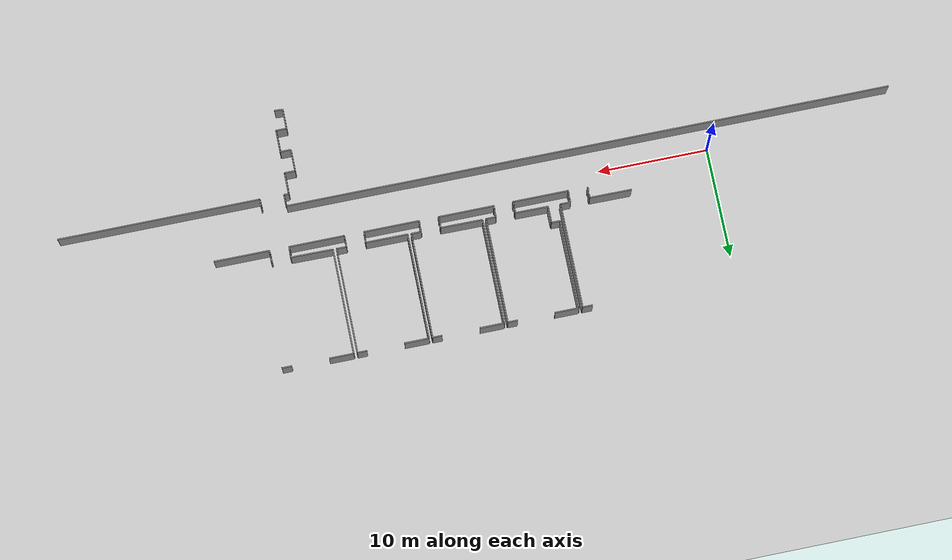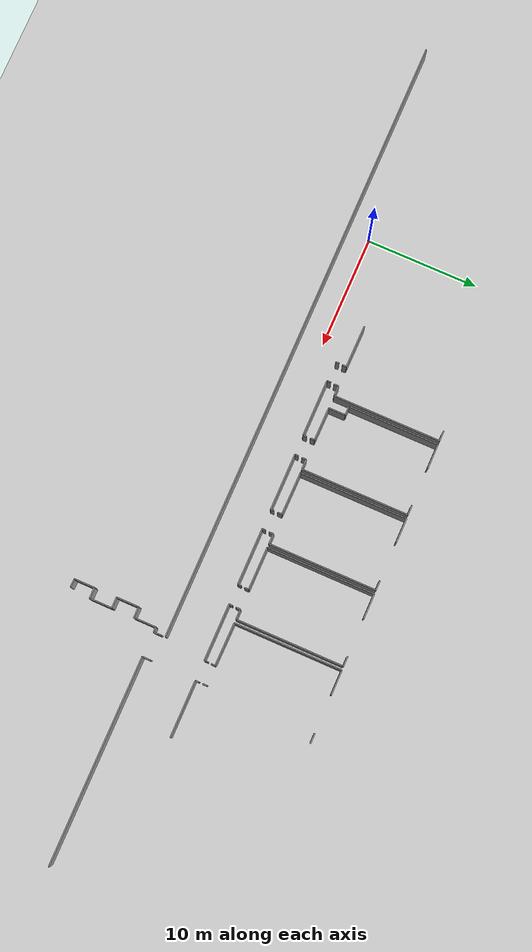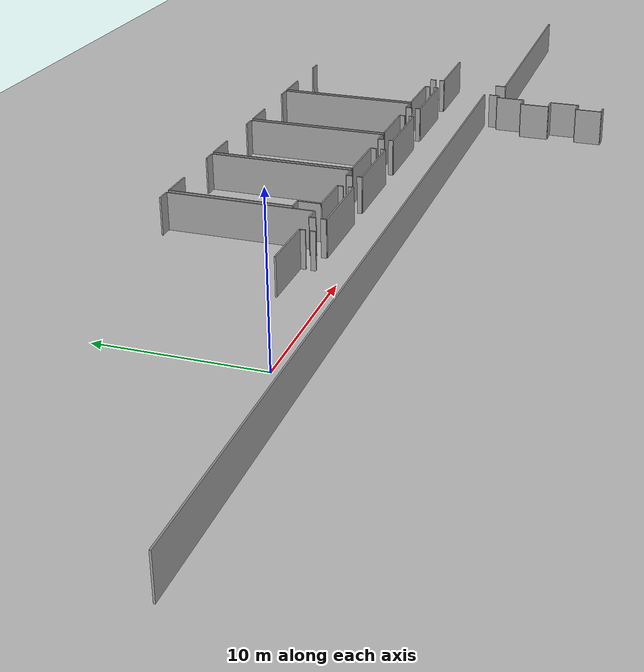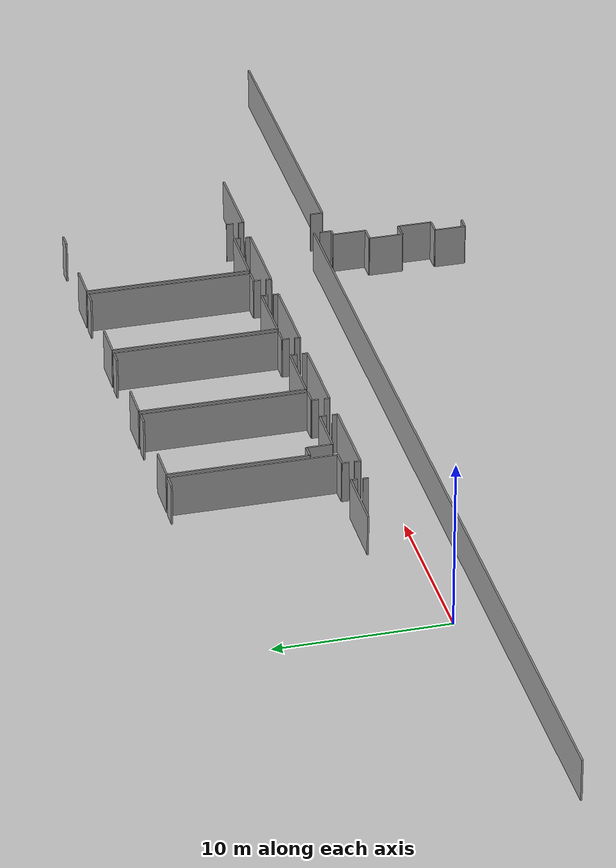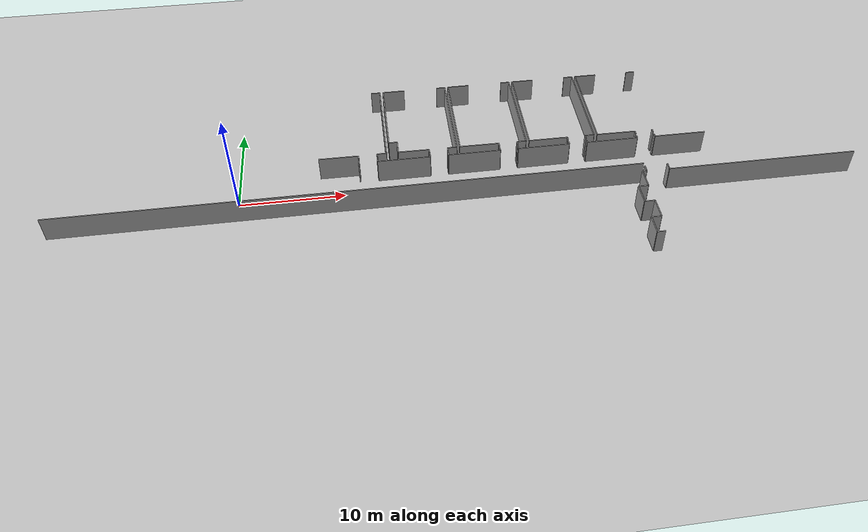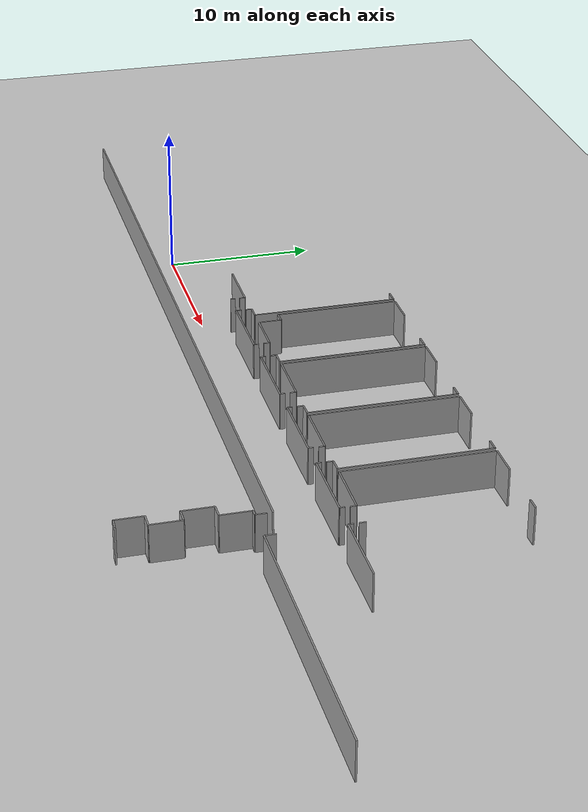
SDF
<sdf version="1.6">
 <world name="default">
  <model name="ground_plane">
   <static>1</static>
   <link name="link">
    <collision name="collision">
     <geometry><plane><normal>0 0 1</normal><size>100 100</size></plane></geometry>
     <surface><friction><ode><mu>100</mu><mu2>50</mu2></ode></friction></surface>
    </collision>
    <visual name="visual">
     <cast_shadows>0</cast_shadows>
     <geometry><plane><normal>0 0 1</normal><size>100 100</size></plane></geometry>
     <material>
      <script><uri>file://media/materials/scripts/gazebo.material</uri><name>Gazebo/Grey</name></script>
     </material>
    </visual>
   </link>
  </model>
  <model name="0510032198_A_40_1_106">
   <static>1</static>
   <link name="Wall_115">
    <collision name="Wall_115_Collision">
     <geometry><box><size>0.90599550242 0.1 2.5</size></box></geometry>
     <pose>0.45299775121 0 1.25 0 0 0</pose>
    </collision>
    <visual name="Wall_115_Visual">
     <pose>0.45299775121 0 1.25 0 0 0</pose>
     <geometry><box><size>0.90599550242 0.1 2.5</size></box></geometry>
     <material>
      <script><uri>file://media/materials/scripts/gazebo.material</uri><name>Gazebo/Grey</name></script>
      <ambient>1 1 1 1</ambient>
     </material>
    </visual>
    <pose>80.8588598508 -0.336810275826 0 0 0 0.0</pose>
   </link>
   <link name="Wall_116">
    <collision name="Wall_116_Collision">
     <geometry><box><size>9.60944745836 0.1 2.5</size></box></geometry>
     <pose>4.80472372918 0 1.25 0 0 0</pose>
    </collision>
    <visual name="Wall_116_Visual">
     <pose>4.80472372918 0 1.25 0 0 0</pose>
     <geometry><box><size>9.60944745836 0.1 2.5</size></box></geometry>
     <material>
      <script><uri>file://media/materials/scripts/gazebo.material</uri><name>Gazebo/Grey</name></script>
      <ambient>1 1 1 1</ambient>
     </material>
    </visual>
    <pose>81.7648553533 -0.336810275826 0 0 0 -1.57079632679</pose>
   </link>
   <link name="Wall_117">
    <collision name="Wall_117_Collision">
     <geometry><box><size>0.909934060908 0.1 2.5</size></box></geometry>
     <pose>0.454967030454 0 1.25 0 0 0</pose>
    </collision>
    <visual name="Wall_117_Visual">
     <pose>0.454967030454 0 1.25 0 0 0</pose>
     <geometry><box><size>0.909934060908 0.1 2.5</size></box></geometry>
     <material>
      <script><uri>file://media/materials/scripts/gazebo.material</uri><name>Gazebo/Grey</name></script>
      <ambient>1 1 1 1</ambient>
     </material>
    </visual>
    <pose>81.7648553533 -9.94625773419 0 0 0 3.14159265359</pose>
   </link>
   <link name="Wall_118">
    <collision name="Wall_118_Collision">
     <geometry><box><size>0.410499434626 0.1 2.5</size></box></geometry>
     <pose>0.205249717313 0 1.25 0 0 0</pose>
    </collision>
    <visual name="Wall_118_Visual">
     <pose>0.205249717313 0 1.25 0 0 0</pose>
     <geometry><box><size>0.410499434626 0.1 2.5</size></box></geometry>
     <material>
      <script><uri>file://media/materials/scripts/gazebo.material</uri><name>Gazebo/Grey</name></script>
      <ambient>1 1 1 1</ambient>
     </material>
    </visual>
    <pose>80.8549212924 -9.94625773419 0 0 0 -1.57079632679</pose>
   </link>
   <link name="Wall_119">
    <collision name="Wall_119_Collision">
     <geometry><box><size>0.36374493387 0.1 2.5</size></box></geometry>
     <pose>0.181872466935 0 1.25 0 0 0</pose>
    </collision>
    <visual name="Wall_119_Visual">
     <pose>0.181872466935 0 1.25 0 0 0</pose>
     <geometry><box><size>0.36374493387 0.1 2.5</size></box></geometry>
     <material>
      <script><uri>file://media/materials/scripts/gazebo.material</uri><name>Gazebo/Grey</name></script>
      <ambient>1 1 1 1</ambient>
     </material>
    </visual>
    <pose>79.0623689794 -10.3567571688 0 0 0 1.57079632679</pose>
   </link>
   <link name="Wall_120">
    <collision name="Wall_120_Collision">
     <geometry><box><size>3.80484100542 0.1 2.5</size></box></geometry>
     <pose>1.90242050271 0 1.25 0 0 0</pose>
    </collision>
    <visual name="Wall_120_Visual">
     <pose>1.90242050271 0 1.25 0 0 0</pose>
     <geometry><box><size>3.80484100542 0.1 2.5</size></box></geometry>
     <material>
      <script><uri>file://media/materials/scripts/gazebo.material</uri><name>Gazebo/Grey</name></script>
      <ambient>1 1 1 1</ambient>
     </material>
    </visual>
    <pose>79.0623689794 -9.99301223494 0 0 0 3.13568228063</pose>
   </link>
   <link name="Wall_121">
    <collision name="Wall_121_Collision">
     <geometry><box><size>1.4999555324 0.1 2.5</size></box></geometry>
     <pose>0.749977766202 0 1.25 0 0 0</pose>
    </collision>
    <visual name="Wall_121_Visual">
     <pose>0.749977766202 0 1.25 0 0 0</pose>
     <geometry><box><size>1.4999555324 0.1 2.5</size></box></geometry>
     <material>
      <script><uri>file://media/materials/scripts/gazebo.material</uri><name>Gazebo/Grey</name></script>
      <ambient>1 1 1 1</ambient>
     </material>
    </visual>
    <pose>82.9001765999 -9.94536838227 0 0 0 1.57079632679</pose>
   </link>
   <link name="Wall_122">
    <collision name="Wall_122_Collision">
     <geometry><box><size>0.808674992695 0.1 2.5</size></box></geometry>
     <pose>0.404337496347 0 1.25 0 0 0</pose>
    </collision>
    <visual name="Wall_122_Visual">
     <pose>0.404337496347 0 1.25 0 0 0</pose>
     <geometry><box><size>0.808674992695 0.1 2.5</size></box></geometry>
     <material>
      <script><uri>file://media/materials/scripts/gazebo.material</uri><name>Gazebo/Grey</name></script>
      <ambient>1 1 1 1</ambient>
     </material>
    </visual>
    <pose>82.9001765999 -8.44541284986 0 0 0 3.14159265359</pose>
   </link>
   <link name="Wall_123">
    <collision name="Wall_123_Collision">
     <geometry><box><size>8.10860257404 0.1 2.5</size></box></geometry>
     <pose>4.05430128702 0 1.25 0 0 0</pose>
    </collision>
    <visual name="Wall_123_Visual">
     <pose>4.05430128702 0 1.25 0 0 0</pose>
     <geometry><box><size>8.10860257404 0.1 2.5</size></box></geometry>
     <material>
      <script><uri>file://media/materials/scripts/gazebo.material</uri><name>Gazebo/Grey</name></script>
      <ambient>1 1 1 1</ambient>
     </material>
    </visual>
    <pose>82.0915016072 -8.44541284986 0 0 0 1.57079632679</pose>
   </link>
   <link name="Wall_124">
    <collision name="Wall_124_Collision">
     <geometry><box><size>2.1922524743 0.1 2.5</size></box></geometry>
     <pose>1.09612623715 0 1.25 0 0 0</pose>
    </collision>
    <visual name="Wall_124_Visual">
     <pose>1.09612623715 0 1.25 0 0 0</pose>
     <geometry><box><size>2.1922524743 0.1 2.5</size></box></geometry>
     <material>
      <script><uri>file://media/materials/scripts/gazebo.material</uri><name>Gazebo/Grey</name></script>
      <ambient>1 1 1 1</ambient>
     </material>
    </visual>
    <pose>82.0915016072 -0.336810275826 0 0 0 0.0</pose>
   </link>
   <link name="Wall_125">
    <collision name="Wall_125_Collision">
     <geometry><box><size>0.88388875478 0.1 2.5</size></box></geometry>
     <pose>0.44194437739 0 1.25 0 0 0</pose>
    </collision>
    <visual name="Wall_125_Visual">
     <pose>0.44194437739 0 1.25 0 0 0</pose>
     <geometry><box><size>0.88388875478 0.1 2.5</size></box></geometry>
     <material>
      <script><uri>file://media/materials/scripts/gazebo.material</uri><name>Gazebo/Grey</name></script>
      <ambient>1 1 1 1</ambient>
     </material>
    </visual>
    <pose>87.6864145142 -0.336810275826 0 0 0 0.0</pose>
   </link>
   <link name="Wall_126">
    <collision name="Wall_126_Collision">
     <geometry><box><size>9.61567292178 0.1 2.5</size></box></geometry>
     <pose>4.80783646089 0 1.25 0 0 0</pose>
    </collision>
    <visual name="Wall_126_Visual">
     <pose>4.80783646089 0 1.25 0 0 0</pose>
     <geometry><box><size>9.61567292178 0.1 2.5</size></box></geometry>
     <material>
      <script><uri>file://media/materials/scripts/gazebo.material</uri><name>Gazebo/Grey</name></script>
      <ambient>1 1 1 1</ambient>
     </material>
    </visual>
    <pose>88.570303269 -0.336810275826 0 0 0 -1.57079632679</pose>
   </link>
   <link name="Wall_127">
    <collision name="Wall_127_Collision">
     <geometry><box><size>0.893417525315 0.1 2.5</size></box></geometry>
     <pose>0.446708762657 0 1.25 0 0 0</pose>
    </collision>
    <visual name="Wall_127_Visual">
     <pose>0.446708762657 0 1.25 0 0 0</pose>
     <geometry><box><size>0.893417525315 0.1 2.5</size></box></geometry>
     <material>
      <script><uri>file://media/materials/scripts/gazebo.material</uri><name>Gazebo/Grey</name></script>
      <ambient>1 1 1 1</ambient>
     </material>
    </visual>
    <pose>88.570303269 -9.9524831976 0 0 0 3.14159265359</pose>
   </link>
   <link name="Wall_128">
    <collision name="Wall_128_Collision">
     <geometry><box><size>0.40427397121 0.1 2.5</size></box></geometry>
     <pose>0.202136985605 0 1.25 0 0 0</pose>
    </collision>
    <visual name="Wall_128_Visual">
     <pose>0.202136985605 0 1.25 0 0 0</pose>
     <geometry><box><size>0.40427397121 0.1 2.5</size></box></geometry>
     <material>
      <script><uri>file://media/materials/scripts/gazebo.material</uri><name>Gazebo/Grey</name></script>
      <ambient>1 1 1 1</ambient>
     </material>
    </visual>
    <pose>87.6768857437 -9.9524831976 0 0 0 -1.57079632679</pose>
   </link>
   <link name="Wall_129">
    <collision name="Wall_129_Collision">
     <geometry><box><size>0.388900888081 0.1 2.5</size></box></geometry>
     <pose>0.194450444041 0 1.25 0 0 0</pose>
    </collision>
    <visual name="Wall_129_Visual">
     <pose>0.194450444041 0 1.25 0 0 0</pose>
     <geometry><box><size>0.388900888081 0.1 2.5</size></box></geometry>
     <material>
      <script><uri>file://media/materials/scripts/gazebo.material</uri><name>Gazebo/Grey</name></script>
      <ambient>1 1 1 1</ambient>
     </material>
    </visual>
    <pose>85.8789973192 -10.3567571688 0 0 0 1.57079632679</pose>
   </link>
   <link name="Wall_130">
    <collision name="Wall_130_Collision">
     <geometry><box><size>2.97890560167 0.1 2.5</size></box></geometry>
     <pose>1.48945280083 0 1.25 0 0 0</pose>
    </collision>
    <visual name="Wall_130_Visual">
     <pose>1.48945280083 0 1.25 0 0 0</pose>
     <geometry><box><size>2.97890560167 0.1 2.5</size></box></geometry>
     <material>
      <script><uri>file://media/materials/scripts/gazebo.material</uri><name>Gazebo/Grey</name></script>
      <ambient>1 1 1 1</ambient>
     </material>
    </visual>
    <pose>85.8789973192 -9.96785628073 0 0 0 3.13404353486</pose>
   </link>
   <link name="Wall_131">
    <collision name="Wall_131_Collision">
     <geometry><box><size>9.61770572616 0.1 2.5</size></box></geometry>
     <pose>4.80885286308 0 1.25 0 0 0</pose>
    </collision>
    <visual name="Wall_131_Visual">
     <pose>4.80885286308 0 1.25 0 0 0</pose>
     <geometry><box><size>9.61770572616 0.1 2.5</size></box></geometry>
     <material>
      <script><uri>file://media/materials/scripts/gazebo.material</uri><name>Gazebo/Grey</name></script>
      <ambient>1 1 1 1</ambient>
     </material>
    </visual>
    <pose>88.8912322606 -9.93901586858 0 0 0 1.57079632679</pose>
   </link>
   <link name="Wall_132">
    <collision name="Wall_132_Collision">
     <geometry><box><size>2.2005107421 0.1 2.5</size></box></geometry>
     <pose>1.10025537105 0 1.25 0 0 0</pose>
    </collision>
    <visual name="Wall_132_Visual">
     <pose>1.10025537105 0 1.25 0 0 0</pose>
     <geometry><box><size>2.2005107421 0.1 2.5</size></box></geometry>
     <material>
      <script><uri>file://media/materials/scripts/gazebo.material</uri><name>Gazebo/Grey</name></script>
      <ambient>1 1 1 1</ambient>
     </material>
    </visual>
    <pose>88.8912322606 -0.321310142423 0 0 0 0.0</pose>
   </link>
   <link name="Wall_133">
    <collision name="Wall_133_Collision">
     <geometry><box><size>0.868769772199 0.1 2.5</size></box></geometry>
     <pose>0.434384886099 0 1.25 0 0 0</pose>
    </collision>
    <visual name="Wall_133_Visual">
     <pose>0.434384886099 0 1.25 0 0 0</pose>
     <geometry><box><size>0.868769772199 0.1 2.5</size></box></geometry>
     <material>
      <script><uri>file://media/materials/scripts/gazebo.material</uri><name>Gazebo/Grey</name></script>
      <ambient>1 1 1 1</ambient>
     </material>
    </visual>
    <pose>94.5251496017 -0.321310142423 0 0 0 0.0</pose>
   </link>
   <link name="Wall_134">
    <collision name="Wall_134_Collision">
     <geometry><box><size>9.63790671969 0.1 2.5</size></box></geometry>
     <pose>4.81895335984 0 1.25 0 0 0</pose>
    </collision>
    <visual name="Wall_134_Visual">
     <pose>4.81895335984 0 1.25 0 0 0</pose>
     <geometry><box><size>9.63790671969 0.1 2.5</size></box></geometry>
     <material>
      <script><uri>file://media/materials/scripts/gazebo.material</uri><name>Gazebo/Grey</name></script>
      <ambient>1 1 1 1</ambient>
     </material>
    </visual>
    <pose>95.3939193739 -0.321310142423 0 0 0 -1.57079632679</pose>
   </link>
   <link name="Wall_135">
    <collision name="Wall_135_Collision">
     <geometry><box><size>0.894179826958 0.1 2.5</size></box></geometry>
     <pose>0.447089913479 0 1.25 0 0 0</pose>
    </collision>
    <visual name="Wall_135_Visual">
     <pose>0.447089913479 0 1.25 0 0 0</pose>
     <geometry><box><size>0.894179826958 0.1 2.5</size></box></geometry>
     <material>
      <script><uri>file://media/materials/scripts/gazebo.material</uri><name>Gazebo/Grey</name></script>
      <ambient>1 1 1 1</ambient>
     </material>
    </visual>
    <pose>95.3939193739 -9.95921686211 0 0 0 3.14159265359</pose>
   </link>
   <link name="Wall_136">
    <collision name="Wall_136_Collision">
     <geometry><box><size>0.399446060806 0.1 2.5</size></box></geometry>
     <pose>0.199723030403 0 1.25 0 0 0</pose>
    </collision>
    <visual name="Wall_136_Visual">
     <pose>0.199723030403 0 1.25 0 0 0</pose>
     <geometry><box><size>0.399446060806 0.1 2.5</size></box></geometry>
     <material>
      <script><uri>file://media/materials/scripts/gazebo.material</uri><name>Gazebo/Grey</name></script>
      <ambient>1 1 1 1</ambient>
     </material>
    </visual>
    <pose>94.4997395469 -9.95921686211 0 0 0 -1.57079632679</pose>
   </link>
   <link name="Wall_137">
    <collision name="Wall_137_Collision">
     <geometry><box><size>0.390806642188 0.1 2.5</size></box></geometry>
     <pose>0.195403321094 0 1.25 0 0 0</pose>
    </collision>
    <visual name="Wall_137_Visual">
     <pose>0.195403321094 0 1.25 0 0 0</pose>
     <geometry><box><size>0.390806642188 0.1 2.5</size></box></geometry>
     <material>
      <script><uri>file://media/materials/scripts/gazebo.material</uri><name>Gazebo/Grey</name></script>
      <ambient>1 1 1 1</ambient>
     </material>
    </visual>
    <pose>92.7040109771 -10.3586629229 0 0 0 1.57079632679</pose>
   </link>
   <link name="Wall_138">
    <collision name="Wall_138_Collision">
     <geometry><box><size>3.81288779151 0.1 2.5</size></box></geometry>
     <pose>1.90644389576 0 1.25 0 0 0</pose>
    </collision>
    <visual name="Wall_138_Visual">
     <pose>1.90644389576 0 1.25 0 0 0</pose>
     <geometry><box><size>3.81288779151 0.1 2.5</size></box></geometry>
     <material>
      <script><uri>file://media/materials/scripts/gazebo.material</uri><name>Gazebo/Grey</name></script>
      <ambient>1 1 1 1</ambient>
     </material>
    </visual>
    <pose>92.7040109771 -9.96785628073 0 0 0 3.13402865256</pose>
   </link>
   <link name="Wall_139">
    <collision name="Wall_139_Collision">
     <geometry><box><size>9.65658310994 0.1 2.5</size></box></geometry>
     <pose>4.82829155497 0 1.25 0 0 0</pose>
    </collision>
    <visual name="Wall_139_Visual">
     <pose>4.82829155497 0 1.25 0 0 0</pose>
     <geometry><box><size>9.65658310994 0.1 2.5</size></box></geometry>
     <material>
      <script><uri>file://media/materials/scripts/gazebo.material</uri><name>Gazebo/Grey</name></script>
      <ambient>1 1 1 1</ambient>
     </material>
    </visual>
    <pose>95.7284427448 -9.97458994524 0 0 0 1.57079632679</pose>
   </link>
   <link name="Wall_140">
    <collision name="Wall_140_Collision">
     <geometry><box><size>2.20470340114 0.1 2.5</size></box></geometry>
     <pose>1.10235170057 0 1.25 0 0 0</pose>
    </collision>
    <visual name="Wall_140_Visual">
     <pose>1.10235170057 0 1.25 0 0 0</pose>
     <geometry><box><size>2.20470340114 0.1 2.5</size></box></geometry>
     <material>
      <script><uri>file://media/materials/scripts/gazebo.material</uri><name>Gazebo/Grey</name></script>
      <ambient>1 1 1 1</ambient>
     </material>
    </visual>
    <pose>95.7284427448 -0.318006835305 0 0 0 0.0</pose>
   </link>
   <link name="Wall_141">
    <collision name="Wall_141_Collision">
     <geometry><box><size>0.874232933972 0.1 2.5</size></box></geometry>
     <pose>0.437116466986 0 1.25 0 0 0</pose>
    </collision>
    <visual name="Wall_141_Visual">
     <pose>0.437116466986 0 1.25 0 0 0</pose>
     <geometry><box><size>0.874232933972 0.1 2.5</size></box></geometry>
     <material>
      <script><uri>file://media/materials/scripts/gazebo.material</uri><name>Gazebo/Grey</name></script>
      <ambient>1 1 1 1</ambient>
     </material>
    </visual>
    <pose>101.333900825 -0.318006835305 0 0 0 0.0</pose>
   </link>
   <link name="Wall_142">
    <collision name="Wall_142_Collision">
     <geometry><box><size>9.63320585956 0.1 2.5</size></box></geometry>
     <pose>4.81660292978 0 1.25 0 0 0</pose>
    </collision>
    <visual name="Wall_142_Visual">
     <pose>4.81660292978 0 1.25 0 0 0</pose>
     <geometry><box><size>9.63320585956 0.1 2.5</size></box></geometry>
     <material>
      <script><uri>file://media/materials/scripts/gazebo.material</uri><name>Gazebo/Grey</name></script>
      <ambient>1 1 1 1</ambient>
     </material>
    </visual>
    <pose>102.208133759 -0.318006835305 0 0 0 -1.57079632679</pose>
   </link>
   <link name="Wall_143">
    <collision name="Wall_143_Collision">
     <geometry><box><size>0.891384720934 0.1 2.5</size></box></geometry>
     <pose>0.445692360467 0 1.25 0 0 0</pose>
    </collision>
    <visual name="Wall_143_Visual">
     <pose>0.445692360467 0 1.25 0 0 0</pose>
     <geometry><box><size>0.891384720934 0.1 2.5</size></box></geometry>
     <material>
      <script><uri>file://media/materials/scripts/gazebo.material</uri><name>Gazebo/Grey</name></script>
      <ambient>1 1 1 1</ambient>
     </material>
    </visual>
    <pose>102.208133759 -9.95121269486 0 0 0 3.14159265359</pose>
   </link>
   <link name="Wall_144">
    <collision name="Wall_144_Collision">
     <geometry><box><size>0.409355982162 0.1 2.5</size></box></geometry>
     <pose>0.204677991081 0 1.25 0 0 0</pose>
    </collision>
    <visual name="Wall_144_Visual">
     <pose>0.204677991081 0 1.25 0 0 0</pose>
     <geometry><box><size>0.409355982162 0.1 2.5</size></box></geometry>
     <material>
      <script><uri>file://media/materials/scripts/gazebo.material</uri><name>Gazebo/Grey</name></script>
      <ambient>1 1 1 1</ambient>
     </material>
    </visual>
    <pose>101.316749038 -9.95121269486 0 0 0 -1.57079632679</pose>
   </link>
   <link name="Wall_145">
    <collision name="Wall_145_Collision">
     <geometry><box><size>0.378990966726 0.1 2.5</size></box></geometry>
     <pose>0.189495483363 0 1.25 0 0 0</pose>
    </collision>
    <visual name="Wall_145_Visual">
     <pose>0.189495483363 0 1.25 0 0 0</pose>
     <geometry><box><size>0.378990966726 0.1 2.5</size></box></geometry>
     <material>
      <script><uri>file://media/materials/scripts/gazebo.material</uri><name>Gazebo/Grey</name></script>
      <ambient>1 1 1 1</ambient>
     </material>
    </visual>
    <pose>99.5408403105 -10.360568677 0 0 0 1.57079632679</pose>
   </link>
   <link name="Wall_146">
    <collision name="Wall_146_Collision">
     <geometry><box><size>3.81240396967 0.1 2.5</size></box></geometry>
     <pose>1.90620198483 0 1.25 0 0 0</pose>
    </collision>
    <visual name="Wall_146_Visual">
     <pose>1.90620198483 0 1.25 0 0 0</pose>
     <geometry><box><size>3.81240396967 0.1 2.5</size></box></geometry>
     <material>
      <script><uri>file://media/materials/scripts/gazebo.material</uri><name>Gazebo/Grey</name></script>
      <ambient>1 1 1 1</ambient>
     </material>
    </visual>
    <pose>99.5408403105 -9.9815777103 0 0 0 3.13975974999</pose>
   </link>
   <link name="Wall_147">
    <collision name="Wall_147_Collision">
     <geometry><box><size>9.65188224981 0.1 2.5</size></box></geometry>
     <pose>4.8259411249 0 1.25 0 0 0</pose>
    </collision>
    <visual name="Wall_147_Visual">
     <pose>4.8259411249 0 1.25 0 0 0</pose>
     <geometry><box><size>9.65188224981 0.1 2.5</size></box></geometry>
     <material>
      <script><uri>file://media/materials/scripts/gazebo.material</uri><name>Gazebo/Grey</name></script>
      <ambient>1 1 1 1</ambient>
     </material>
    </visual>
    <pose>102.545833386 -9.95947096266 0 0 0 1.57079632679</pose>
   </link>
   <link name="Wall_148">
    <collision name="Wall_148_Collision">
     <geometry><box><size>2.20495750168 0.1 2.5</size></box></geometry>
     <pose>1.10247875084 0 1.25 0 0 0</pose>
    </collision>
    <visual name="Wall_148_Visual">
     <pose>1.10247875084 0 1.25 0 0 0</pose>
     <geometry><box><size>2.20495750168 0.1 2.5</size></box></geometry>
     <material>
      <script><uri>file://media/materials/scripts/gazebo.material</uri><name>Gazebo/Grey</name></script>
      <ambient>1 1 1 1</ambient>
     </material>
    </visual>
    <pose>102.545833386 -0.307588712854 0 0 0 0.0</pose>
   </link>
   <link name="Wall_149">
    <collision name="Wall_149_Collision">
     <geometry><box><size>0.893671625862 0.1 2.5</size></box></geometry>
     <pose>0.446835812931 0 1.25 0 0 0</pose>
    </collision>
    <visual name="Wall_149_Visual">
     <pose>0.446835812931 0 1.25 0 0 0</pose>
     <geometry><box><size>0.893671625862 0.1 2.5</size></box></geometry>
     <material>
      <script><uri>file://media/materials/scripts/gazebo.material</uri><name>Gazebo/Grey</name></script>
      <ambient>1 1 1 1</ambient>
     </material>
    </visual>
    <pose>108.141635645 -0.307588712854 0 0 0 0.0</pose>
   </link>
   <link name="Wall_152">
    <collision name="Wall_152_Collision">
     <geometry><box><size>0.417741300232 0.1 2.5</size></box></geometry>
     <pose>0.208870650116 0 1.25 0 0 0</pose>
    </collision>
    <visual name="Wall_152_Visual">
     <pose>0.208870650116 0 1.25 0 0 0</pose>
     <geometry><box><size>0.417741300232 0.1 2.5</size></box></geometry>
     <material>
      <script><uri>file://media/materials/scripts/gazebo.material</uri><name>Gazebo/Grey</name></script>
      <ambient>1 1 1 1</ambient>
     </material>
    </visual>
    <pose>108.12511911 -9.94282737679 0 0 0 -1.57079632679</pose>
   </link>
   <link name="Wall_153">
    <collision name="Wall_153_Collision">
     <geometry><box><size>0.363871984144 0.1 2.5</size></box></geometry>
     <pose>0.181935992072 0 1.25 0 0 0</pose>
    </collision>
    <visual name="Wall_153_Visual">
     <pose>0.181935992072 0 1.25 0 0 0</pose>
     <geometry><box><size>0.363871984144 0.1 2.5</size></box></geometry>
     <material>
      <script><uri>file://media/materials/scripts/gazebo.material</uri><name>Gazebo/Grey</name></script>
      <ambient>1 1 1 1</ambient>
     </material>
    </visual>
    <pose>106.361534259 -10.360568677 0 0 0 1.57079632679</pose>
   </link>
   <link name="Wall_154">
    <collision name="Wall_154_Collision">
     <geometry><box><size>3.81588245442 0.1 2.5</size></box></geometry>
     <pose>1.90794122721 0 1.25 0 0 0</pose>
    </collision>
    <visual name="Wall_154_Visual">
     <pose>1.90794122721 0 1.25 0 0 0</pose>
     <geometry><box><size>3.81588245442 0.1 2.5</size></box></geometry>
     <material>
      <script><uri>file://media/materials/scripts/gazebo.material</uri><name>Gazebo/Grey</name></script>
      <ambient>1 1 1 1</ambient>
     </material>
    </visual>
    <pose>106.361534259 -9.99669669288 0 0 0 3.13183702795</pose>
   </link>
   <link name="Wall_191">
    <collision name="Wall_191_Collision">
     <geometry><box><size>1.80652784307 0.1 2.5</size></box></geometry>
     <pose>0.903263921534 0 1.25 0 0 0</pose>
    </collision>
    <visual name="Wall_191_Visual">
     <pose>0.903263921534 0 1.25 0 0 0</pose>
     <geometry><box><size>1.80652784307 0.1 2.5</size></box></geometry>
     <material>
      <script><uri>file://media/materials/scripts/gazebo.material</uri><name>Gazebo/Grey</name></script>
      <ambient>1 1 1 1</ambient>
     </material>
    </visual>
    <pose>104.504440407 -23.5332681142 0 0 0 1.57079632679</pose>
   </link>
   <link name="Wall_192">
    <collision name="Wall_192_Collision">
     <geometry><box><size>0.953766405367 0.1 2.5</size></box></geometry>
     <pose>0.476883202683 0 1.25 0 0 0</pose>
    </collision>
    <visual name="Wall_192_Visual">
     <pose>0.476883202683 0 1.25 0 0 0</pose>
     <geometry><box><size>0.953766405367 0.1 2.5</size></box></geometry>
     <material>
      <script><uri>file://media/materials/scripts/gazebo.material</uri><name>Gazebo/Grey</name></script>
      <ambient>1 1 1 1</ambient>
     </material>
    </visual>
    <pose>104.504440407 -21.7267402711 0 0 0 0.0</pose>
   </link>
   <link name="Wall_193">
    <collision name="Wall_193_Collision">
     <geometry><box><size>2.01006238168 0.1 2.5</size></box></geometry>
     <pose>1.00503119084 0 1.25 0 0 0</pose>
    </collision>
    <visual name="Wall_193_Visual">
     <pose>1.00503119084 0 1.25 0 0 0</pose>
     <geometry><box><size>2.01006238168 0.1 2.5</size></box></geometry>
     <material>
      <script><uri>file://media/materials/scripts/gazebo.material</uri><name>Gazebo/Grey</name></script>
      <ambient>1 1 1 1</ambient>
     </material>
    </visual>
    <pose>105.458206812 -21.7267402711 0 0 0 1.57079632679</pose>
   </link>
   <link name="Wall_194">
    <collision name="Wall_194_Collision">
     <geometry><box><size>0.966979633841 0.1 2.5</size></box></geometry>
     <pose>0.483489816921 0 1.25 0 0 0</pose>
    </collision>
    <visual name="Wall_194_Visual">
     <pose>0.483489816921 0 1.25 0 0 0</pose>
     <geometry><box><size>0.966979633841 0.1 2.5</size></box></geometry>
     <material>
      <script><uri>file://media/materials/scripts/gazebo.material</uri><name>Gazebo/Grey</name></script>
      <ambient>1 1 1 1</ambient>
     </material>
    </visual>
    <pose>105.458206812 -19.7166778894 0 0 0 3.14159265359</pose>
   </link>
   <link name="Wall_195">
    <collision name="Wall_195_Collision">
     <geometry><box><size>1.99443519801 0.1 2.5</size></box></geometry>
     <pose>0.997217599004 0 1.25 0 0 0</pose>
    </collision>
    <visual name="Wall_195_Visual">
     <pose>0.997217599004 0 1.25 0 0 0</pose>
     <geometry><box><size>1.99443519801 0.1 2.5</size></box></geometry>
     <material>
      <script><uri>file://media/materials/scripts/gazebo.material</uri><name>Gazebo/Grey</name></script>
      <ambient>1 1 1 1</ambient>
     </material>
    </visual>
    <pose>104.491227179 -19.7166778894 0 0 0 1.57079632679</pose>
   </link>
   <link name="Wall_196">
    <collision name="Wall_196_Collision">
     <geometry><box><size>0.95389345564 0.1 2.5</size></box></geometry>
     <pose>0.47694672782 0 1.25 0 0 0</pose>
    </collision>
    <visual name="Wall_196_Visual">
     <pose>0.47694672782 0 1.25 0 0 0</pose>
     <geometry><box><size>0.95389345564 0.1 2.5</size></box></geometry>
     <material>
      <script><uri>file://media/materials/scripts/gazebo.material</uri><name>Gazebo/Grey</name></script>
      <ambient>1 1 1 1</ambient>
     </material>
    </visual>
    <pose>104.491227179 -17.7222426914 0 0 0 0.0</pose>
   </link>
   <link name="Wall_197">
    <collision name="Wall_197_Collision">
     <geometry><box><size>1.96838989188 0.1 2.5</size></box></geometry>
     <pose>0.98419494594 0 1.25 0 0 0</pose>
    </collision>
    <visual name="Wall_197_Visual">
     <pose>0.98419494594 0 1.25 0 0 0</pose>
     <geometry><box><size>1.96838989188 0.1 2.5</size></box></geometry>
     <material>
      <script><uri>file://media/materials/scripts/gazebo.material</uri><name>Gazebo/Grey</name></script>
      <ambient>1 1 1 1</ambient>
     </material>
    </visual>
    <pose>105.445120634 -17.7222426914 0 0 0 1.57079632679</pose>
   </link>
   <link name="Wall_198">
    <collision name="Wall_198_Collision">
     <geometry><box><size>0.429684025969 0.1 2.5</size></box></geometry>
     <pose>0.214842012985 0 1.25 0 0 0</pose>
    </collision>
    <visual name="Wall_198_Visual">
     <pose>0.214842012985 0 1.25 0 0 0</pose>
     <geometry><box><size>0.429684025969 0.1 2.5</size></box></geometry>
     <material>
      <script><uri>file://media/materials/scripts/gazebo.material</uri><name>Gazebo/Grey</name></script>
      <ambient>1 1 1 1</ambient>
     </material>
    </visual>
    <pose>105.445120634 -15.7538527996 0 0 0 0.0</pose>
   </link>
   <link name="Wall_199">
    <collision name="Wall_199_Collision">
     <geometry><box><size>0.69331334409 0.1 2.5</size></box></geometry>
     <pose>0.346656672045 0 1.25 0 0 0</pose>
    </collision>
    <visual name="Wall_199_Visual">
     <pose>0.346656672045 0 1.25 0 0 0</pose>
     <geometry><box><size>0.69331334409 0.1 2.5</size></box></geometry>
     <material>
      <script><uri>file://media/materials/scripts/gazebo.material</uri><name>Gazebo/Grey</name></script>
      <ambient>1 1 1 1</ambient>
     </material>
    </visual>
    <pose>105.87480466 -15.7538527996 0 0 0 1.57079632679</pose>
   </link>
   <link name="Wall_200">
    <collision name="Wall_200_Collision">
     <geometry><box><size>0.713895488445 0.1 2.5</size></box></geometry>
     <pose>0.356947744222 0 1.25 0 0 0</pose>
    </collision>
    <visual name="Wall_200_Visual">
     <pose>0.356947744222 0 1.25 0 0 0</pose>
     <geometry><box><size>0.713895488445 0.1 2.5</size></box></geometry>
     <material>
      <script><uri>file://media/materials/scripts/gazebo.material</uri><name>Gazebo/Grey</name></script>
      <ambient>1 1 1 1</ambient>
     </material>
    </visual>
    <pose>108.087639279 -15.0605394555 0 0 0 -1.57079632679</pose>
   </link>
   <link name="Wall_201">
    <collision name="Wall_201_Collision">
     <geometry><box><size>18.3990394999 0.1 2.5</size></box></geometry>
     <pose>9.19951974997 0 1.25 0 0 0</pose>
    </collision>
    <visual name="Wall_201_Visual">
     <pose>9.19951974997 0 1.25 0 0 0</pose>
     <geometry><box><size>18.3990394999 0.1 2.5</size></box></geometry>
     <material>
      <script><uri>file://media/materials/scripts/gazebo.material</uri><name>Gazebo/Grey</name></script>
      <ambient>1 1 1 1</ambient>
     </material>
    </visual>
    <pose>108.087639279 -15.7744349439 0 0 0 0.0</pose>
   </link>
   <link name="Wall_213">
    <collision name="Wall_213_Collision">
     <geometry><box><size>0.754215039197 0.1 2.5</size></box></geometry>
     <pose>0.377107519598 0 1.25 0 0 0</pose>
    </collision>
    <visual name="Wall_213_Visual">
     <pose>0.377107519598 0 1.25 0 0 0</pose>
     <geometry><box><size>0.754215039197 0.1 2.5</size></box></geometry>
     <material>
      <script><uri>file://media/materials/scripts/gazebo.material</uri><name>Gazebo/Grey</name></script>
      <ambient>1 1 1 1</ambient>
     </material>
    </visual>
    <pose>105.257975581 -23.5652847832 0 0 0 3.0991295748</pose>
   </link>
   <link name="Wall_338">
    <collision name="Wall_338_Collision">
     <geometry><box><size>0.324105248447 0.1 2.5</size></box></geometry>
     <pose>0.162052624223 0 1.25 0 0 0</pose>
    </collision>
    <visual name="Wall_338_Visual">
     <pose>0.162052624223 0 1.25 0 0 0</pose>
     <geometry><box><size>0.324105248447 0.1 2.5</size></box></geometry>
     <material>
      <script><uri>file://media/materials/scripts/gazebo.material</uri><name>Gazebo/Grey</name></script>
      <ambient>1 1 1 1</ambient>
     </material>
    </visual>
    <pose>79.0501721531 -10.9799387618 0 0 0 1.57079632679</pose>
   </link>
   <link name="Wall_339">
    <collision name="Wall_339_Collision">
     <geometry><box><size>0.347863649646 0.1 2.5</size></box></geometry>
     <pose>0.173931824823 0 1.25 0 0 0</pose>
    </collision>
    <visual name="Wall_339_Visual">
     <pose>0.173931824823 0 1.25 0 0 0</pose>
     <geometry><box><size>0.347863649646 0.1 2.5</size></box></geometry>
     <material>
      <script><uri>file://media/materials/scripts/gazebo.material</uri><name>Gazebo/Grey</name></script>
      <ambient>1 1 1 1</ambient>
     </material>
    </visual>
    <pose>80.8333227458 -10.6558335133 0 0 0 -1.57079632679</pose>
   </link>
   <link name="Wall_340">
    <collision name="Wall_340_Collision">
     <geometry><box><size>5.04961313192 0.1 2.5</size></box></geometry>
     <pose>2.52480656596 0 1.25 0 0 0</pose>
    </collision>
    <visual name="Wall_340_Visual">
     <pose>2.52480656596 0 1.25 0 0 0</pose>
     <geometry><box><size>5.04961313192 0.1 2.5</size></box></geometry>
     <material>
      <script><uri>file://media/materials/scripts/gazebo.material</uri><name>Gazebo/Grey</name></script>
      <ambient>1 1 1 1</ambient>
     </material>
    </visual>
    <pose>80.8333227458 -11.003697163 0 0 0 0.0</pose>
   </link>
   <link name="Wall_341">
    <collision name="Wall_341_Collision">
     <geometry><box><size>0.331093013505 0.1 2.5</size></box></geometry>
     <pose>0.165546506753 0 1.25 0 0 0</pose>
    </collision>
    <visual name="Wall_341_Visual">
     <pose>0.165546506753 0 1.25 0 0 0</pose>
     <geometry><box><size>0.331093013505 0.1 2.5</size></box></geometry>
     <material>
      <script><uri>file://media/materials/scripts/gazebo.material</uri><name>Gazebo/Grey</name></script>
      <ambient>1 1 1 1</ambient>
     </material>
    </visual>
    <pose>85.8829358777 -11.003697163 0 0 0 1.57079632679</pose>
   </link>
   <link name="Wall_342">
    <collision name="Wall_342_Collision">
     <geometry><box><size>0.308986265865 0.1 2.5</size></box></geometry>
     <pose>0.154493132933 0 1.25 0 0 0</pose>
    </collision>
    <visual name="Wall_342_Visual">
     <pose>0.154493132933 0 1.25 0 0 0</pose>
     <geometry><box><size>0.308986265865 0.1 2.5</size></box></geometry>
     <material>
      <script><uri>file://media/materials/scripts/gazebo.material</uri><name>Gazebo/Grey</name></script>
      <ambient>1 1 1 1</ambient>
     </material>
    </visual>
    <pose>87.6575741021 -10.6726041495 0 0 0 -1.57079632679</pose>
   </link>
   <link name="Wall_343">
    <collision name="Wall_343_Collision">
     <geometry><box><size>5.04237126631 0.1 2.5</size></box></geometry>
     <pose>2.52118563316 0 1.25 0 0 0</pose>
    </collision>
    <visual name="Wall_343_Visual">
     <pose>2.52118563316 0 1.25 0 0 0</pose>
     <geometry><box><size>5.04237126631 0.1 2.5</size></box></geometry>
     <material>
      <script><uri>file://media/materials/scripts/gazebo.material</uri><name>Gazebo/Grey</name></script>
      <ambient>1 1 1 1</ambient>
     </material>
    </visual>
    <pose>87.6575741021 -10.9815904153 0 0 0 0.0</pose>
   </link>
   <link name="Wall_344">
    <collision name="Wall_344_Collision">
     <geometry><box><size>0.309113316139 0.1 2.5</size></box></geometry>
     <pose>0.15455665807 0 1.25 0 0 0</pose>
    </collision>
    <visual name="Wall_344_Visual">
     <pose>0.15455665807 0 1.25 0 0 0</pose>
     <geometry><box><size>0.309113316139 0.1 2.5</size></box></geometry>
     <material>
      <script><uri>file://media/materials/scripts/gazebo.material</uri><name>Gazebo/Grey</name></script>
      <ambient>1 1 1 1</ambient>
     </material>
    </visual>
    <pose>92.6999453684 -10.9815904153 0 0 0 1.57079632679</pose>
   </link>
   <link name="Wall_345">
    <collision name="Wall_345_Collision">
     <geometry><box><size>0.309113316139 0.1 2.5</size></box></geometry>
     <pose>0.15455665807 0 1.25 0 0 0</pose>
    </collision>
    <visual name="Wall_345_Visual">
     <pose>0.15455665807 0 1.25 0 0 0</pose>
     <geometry><box><size>0.309113316139 0.1 2.5</size></box></geometry>
     <material>
      <script><uri>file://media/materials/scripts/gazebo.material</uri><name>Gazebo/Grey</name></script>
      <ambient>1 1 1 1</ambient>
     </material>
    </visual>
    <pose>94.4772516485 -10.6724770992 0 0 0 -1.57079632679</pose>
   </link>
   <link name="Wall_346">
    <collision name="Wall_346_Collision">
     <geometry><box><size>5.03703515481 0.1 2.5</size></box></geometry>
     <pose>2.51851757741 0 1.25 0 0 0</pose>
    </collision>
    <visual name="Wall_346_Visual">
     <pose>2.51851757741 0 1.25 0 0 0</pose>
     <geometry><box><size>5.03703515481 0.1 2.5</size></box></geometry>
     <material>
      <script><uri>file://media/materials/scripts/gazebo.material</uri><name>Gazebo/Grey</name></script>
      <ambient>1 1 1 1</ambient>
     </material>
    </visual>
    <pose>94.4772516485 -10.9815904153 0 0 0 0.0</pose>
   </link>
   <link name="Wall_347">
    <collision name="Wall_347_Collision">
     <geometry><box><size>0.315211729281 0.1 2.5</size></box></geometry>
     <pose>0.157605864641 0 1.25 0 0 0</pose>
    </collision>
    <visual name="Wall_347_Visual">
     <pose>0.157605864641 0 1.25 0 0 0</pose>
     <geometry><box><size>0.315211729281 0.1 2.5</size></box></geometry>
     <material>
      <script><uri>file://media/materials/scripts/gazebo.material</uri><name>Gazebo/Grey</name></script>
      <ambient>1 1 1 1</ambient>
     </material>
    </visual>
    <pose>99.5142868033 -10.9815904153 0 0 0 1.57079632679</pose>
   </link>
   <link name="Wall_348">
    <collision name="Wall_348_Collision">
     <geometry><box><size>0.313051874627 0.1 2.5</size></box></geometry>
     <pose>0.156525937313 0 1.25 0 0 0</pose>
    </collision>
    <visual name="Wall_348_Visual">
     <pose>0.156525937313 0 1.25 0 0 0</pose>
     <geometry><box><size>0.313051874627 0.1 2.5</size></box></geometry>
     <material>
      <script><uri>file://media/materials/scripts/gazebo.material</uri><name>Gazebo/Grey</name></script>
      <ambient>1 1 1 1</ambient>
     </material>
    </visual>
    <pose>101.298961999 -10.666378686 0 0 0 -1.57079632679</pose>
   </link>
   <link name="Wall_349">
    <collision name="Wall_349_Collision">
     <geometry><box><size>5.03728925536 0.1 2.5</size></box></geometry>
     <pose>2.51864462768 0 1.25 0 0 0</pose>
    </collision>
    <visual name="Wall_349_Visual">
     <pose>2.51864462768 0 1.25 0 0 0</pose>
     <geometry><box><size>5.03728925536 0.1 2.5</size></box></geometry>
     <material>
      <script><uri>file://media/materials/scripts/gazebo.material</uri><name>Gazebo/Grey</name></script>
      <ambient>1 1 1 1</ambient>
     </material>
    </visual>
    <pose>101.298961999 -10.9794305607 0 0 0 0.0</pose>
   </link>
   <link name="Wall_350">
    <collision name="Wall_350_Collision">
     <geometry><box><size>0.313051874627 0.1 2.5</size></box></geometry>
     <pose>0.156525937313 0 1.25 0 0 0</pose>
    </collision>
    <visual name="Wall_350_Visual">
     <pose>0.156525937313 0 1.25 0 0 0</pose>
     <geometry><box><size>0.313051874627 0.1 2.5</size></box></geometry>
     <material>
      <script><uri>file://media/materials/scripts/gazebo.material</uri><name>Gazebo/Grey</name></script>
      <ambient>1 1 1 1</ambient>
     </material>
    </visual>
    <pose>106.336251255 -10.9794305607 0 0 0 1.57079632679</pose>
   </link>
   <link name="Wall_351">
    <collision name="Wall_351_Collision">
     <geometry><box><size>0.322072444066 0.1 2.5</size></box></geometry>
     <pose>0.161036222033 0 1.25 0 0 0</pose>
    </collision>
    <visual name="Wall_351_Visual">
     <pose>0.161036222033 0 1.25 0 0 0</pose>
     <geometry><box><size>0.322072444066 0.1 2.5</size></box></geometry>
     <material>
      <script><uri>file://media/materials/scripts/gazebo.material</uri><name>Gazebo/Grey</name></script>
      <ambient>1 1 1 1</ambient>
     </material>
    </visual>
    <pose>108.13007407 -10.666378686 0 0 0 -1.57079632679</pose>
   </link>
   <link name="Wall_352">
    <collision name="Wall_352_Collision">
     <geometry><box><size>5.02394897661 0.1 2.5</size></box></geometry>
     <pose>2.51197448831 0 1.25 0 0 0</pose>
    </collision>
    <visual name="Wall_352_Visual">
     <pose>2.51197448831 0 1.25 0 0 0</pose>
     <geometry><box><size>5.02394897661 0.1 2.5</size></box></geometry>
     <material>
      <script><uri>file://media/materials/scripts/gazebo.material</uri><name>Gazebo/Grey</name></script>
      <ambient>1 1 1 1</ambient>
     </material>
    </visual>
    <pose>108.13007407 -10.9884511301 0 0 0 0.0</pose>
   </link>
   <link name="Wall_367">
    <collision name="Wall_367_Collision">
     <geometry><box><size>55.3760052853 0.1 2.5</size></box></geometry>
     <pose>27.6880026426 0 1.25 0 0 0</pose>
    </collision>
    <visual name="Wall_367_Visual">
     <pose>27.6880026426 0 1.25 0 0 0</pose>
     <geometry><box><size>55.3760052853 0.1 2.5</size></box></geometry>
     <material>
      <script><uri>file://media/materials/scripts/gazebo.material</uri><name>Gazebo/Grey</name></script>
      <ambient>1 1 1 1</ambient>
     </material>
    </visual>
    <pose>105.862480784 -14.7026388342 0 0 0 3.14159265359</pose>
   </link>
   <pose>-67.6 12.6852799553 0 0 0 0</pose>
  </model>
 </world>
</sdf>
